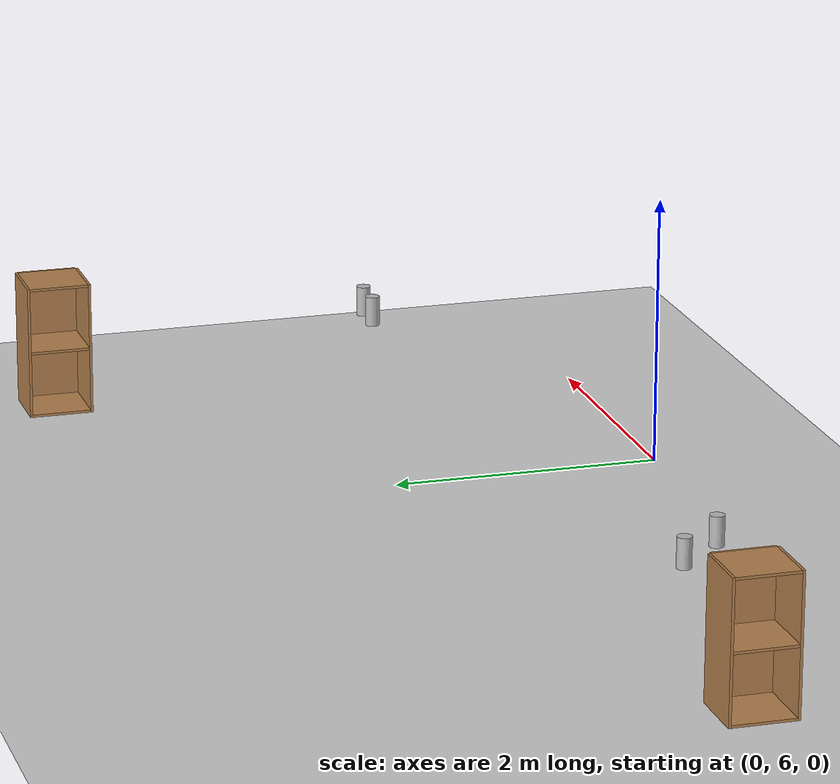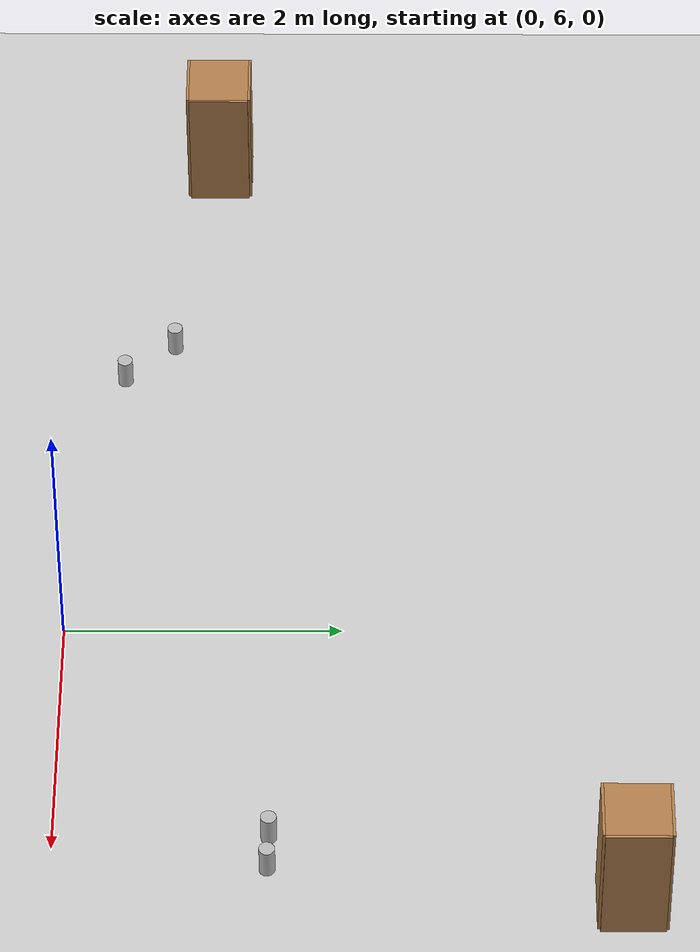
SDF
<sdf version="1.6">
 <world name="default">
  <model name="ground_plane">
   <static>1</static>
   <link name="link">
    <collision name="collision">
     <geometry><plane><normal>0 0 1</normal><size>100 100</size></plane></geometry>
     <surface><friction><ode><mu>100</mu><mu2>50</mu2></ode></friction></surface>
    </collision>
    <visual name="visual">
     <transparency>1</transparency>
     <cast_shadows>0</cast_shadows>
     <geometry><plane><normal>0 0 1</normal><size>100 100</size></plane></geometry>
     <material>
      <script><uri>file://media/materials/scripts/gazebo.material</uri><name>Gazebo/Grey</name></script>
     </material>
    </visual>
   </link>
  </model>
  <model name="cabinet">
   <static>1</static>
   <link name="cabinet_bottom_plate">
    <inertial>
     <pose>0 0 -1 0 -0 0</pose>
     <inertia><ixx>2.05</ixx><ixy>0</ixy><ixz>0</ixz><iyy>2.05</iyy><iyz>0</iyz><izz>2.05</izz></inertia>
     <mass>25</mass>
    </inertial>
    <collision name="cabinet_bottom_plate_geom">
     <pose>0 0 0.01 0 -0 0</pose>
     <geometry><box><size>0.45 0.45 0.02</size></box></geometry>
    </collision>
    <visual name="cabinet_bottom_plate_geom_visual">
     <pose>0 0 0.01 0 -0 0</pose>
     <geometry><box><size>0.45 0.45 0.02</size></box></geometry>
     <material>
      <script><uri>file://media/materials/scripts/gazebo.material</uri><name>Gazebo/Wood</name></script>
     </material>
    </visual>
    <collision name="cabinet_bottom_plate_geom_cabinet_back_plate">
     <pose>0.235 0 0.51 0 -0 0</pose>
     <geometry><box><size>0.02 0.45 1.02</size></box></geometry>
    </collision>
    <visual name="cabinet_bottom_plate_geom_cabinet_back_plate_visual">
     <pose>0.235 0 0.51 0 -0 0</pose>
     <geometry><box><size>0.02 0.45 1.02</size></box></geometry>
     <material>
      <script><uri>file://media/materials/scripts/gazebo.material</uri><name>Gazebo/Wood</name></script>
     </material>
    </visual>
    <collision name="cabinet_bottom_plate_geom_cabinet_left_plate">
     <pose>0 0.235 0.51 0 -0 0</pose>
     <geometry><box><size>0.45 0.02 1.02</size></box></geometry>
    </collision>
    <visual name="cabinet_bottom_plate_geom_cabinet_left_plate_visual">
     <pose>0 0.235 0.51 0 -0 0</pose>
     <geometry><box><size>0.45 0.02 1.02</size></box></geometry>
     <material>
      <script><uri>file://media/materials/scripts/gazebo.material</uri><name>Gazebo/Wood</name></script>
     </material>
    </visual>
    <collision name="cabinet_bottom_plate_geom_cabinet_middle_plate">
     <pose>0 0 0.51 0 -0 0</pose>
     <geometry><box><size>0.45 0.45 0.02</size></box></geometry>
    </collision>
    <visual name="cabinet_bottom_plate_geom_cabinet_middle_plate_visual">
     <pose>0 0 0.51 0 -0 0</pose>
     <geometry><box><size>0.45 0.45 0.02</size></box></geometry>
     <material>
      <script><uri>file://media/materials/scripts/gazebo.material</uri><name>Gazebo/Wood</name></script>
     </material>
    </visual>
    <collision name="cabinet_bottom_plate_geom_cabinet_right_plate">
     <pose>0 -0.235 0.51 0 -0 0</pose>
     <geometry><box><size>0.45 0.02 1.02</size></box></geometry>
    </collision>
    <visual name="cabinet_bottom_plate_geom_cabinet_right_plate_visual">
     <pose>0 -0.235 0.51 0 -0 0</pose>
     <geometry><box><size>0.45 0.02 1.02</size></box></geometry>
     <material>
      <script><uri>file://media/materials/scripts/gazebo.material</uri><name>Gazebo/Wood</name></script>
     </material>
    </visual>
    <collision name="cabinet_bottom_plate_geom_cabinet_top_plate">
     <pose>0 0 1.01 0 -0 0</pose>
     <geometry><box><size>0.45 0.45 0.02</size></box></geometry>
    </collision>
    <visual name="cabinet_bottom_plate_geom_cabinet_top_plate_visual">
     <pose>0 0 1.01 0 -0 0</pose>
     <geometry><box><size>0.45 0.45 0.02</size></box></geometry>
     <material>
      <script><uri>file://media/materials/scripts/gazebo.material</uri><name>Gazebo/Wood</name></script>
     </material>
    </visual>
   </link>
   <pose>2.46497 9.99795 0 0 -0 0</pose>
  </model>
  <model name="cabinet_0">
   <static>1</static>
   <link name="cabinet_bottom_plate">
    <inertial>
     <pose>0 0 -1 0 -0 0</pose>
     <inertia><ixx>2.05</ixx><ixy>0</ixy><ixz>0</ixz><iyy>2.05</iyy><iyz>0</iyz><izz>2.05</izz></inertia>
     <mass>25</mass>
    </inertial>
    <collision name="cabinet_bottom_plate_geom">
     <pose>0 0 0.01 0 -0 0</pose>
     <geometry><box><size>0.45 0.45 0.02</size></box></geometry>
    </collision>
    <visual name="cabinet_bottom_plate_geom_visual">
     <pose>0 0 0.01 0 -0 0</pose>
     <geometry><box><size>0.45 0.45 0.02</size></box></geometry>
     <material>
      <script><uri>file://media/materials/scripts/gazebo.material</uri><name>Gazebo/Wood</name></script>
     </material>
    </visual>
    <collision name="cabinet_bottom_plate_geom_cabinet_back_plate">
     <pose>0.235 0 0.51 0 -0 0</pose>
     <geometry><box><size>0.02 0.45 1.02</size></box></geometry>
    </collision>
    <visual name="cabinet_bottom_plate_geom_cabinet_back_plate_visual">
     <pose>0.235 0 0.51 0 -0 0</pose>
     <geometry><box><size>0.02 0.45 1.02</size></box></geometry>
     <material>
      <script><uri>file://media/materials/scripts/gazebo.material</uri><name>Gazebo/Wood</name></script>
     </material>
    </visual>
    <collision name="cabinet_bottom_plate_geom_cabinet_left_plate">
     <pose>0 0.235 0.51 0 -0 0</pose>
     <geometry><box><size>0.45 0.02 1.02</size></box></geometry>
    </collision>
    <visual name="cabinet_bottom_plate_geom_cabinet_left_plate_visual">
     <pose>0 0.235 0.51 0 -0 0</pose>
     <geometry><box><size>0.45 0.02 1.02</size></box></geometry>
     <material>
      <script><uri>file://media/materials/scripts/gazebo.material</uri><name>Gazebo/Wood</name></script>
     </material>
    </visual>
    <collision name="cabinet_bottom_plate_geom_cabinet_middle_plate">
     <pose>0 0 0.51 0 -0 0</pose>
     <geometry><box><size>0.45 0.45 0.02</size></box></geometry>
    </collision>
    <visual name="cabinet_bottom_plate_geom_cabinet_middle_plate_visual">
     <pose>0 0 0.51 0 -0 0</pose>
     <geometry><box><size>0.45 0.45 0.02</size></box></geometry>
     <material>
      <script><uri>file://media/materials/scripts/gazebo.material</uri><name>Gazebo/Wood</name></script>
     </material>
    </visual>
    <collision name="cabinet_bottom_plate_geom_cabinet_right_plate">
     <pose>0 -0.235 0.51 0 -0 0</pose>
     <geometry><box><size>0.45 0.02 1.02</size></box></geometry>
    </collision>
    <visual name="cabinet_bottom_plate_geom_cabinet_right_plate_visual">
     <pose>0 -0.235 0.51 0 -0 0</pose>
     <geometry><box><size>0.45 0.02 1.02</size></box></geometry>
     <material>
      <script><uri>file://media/materials/scripts/gazebo.material</uri><name>Gazebo/Wood</name></script>
     </material>
    </visual>
    <collision name="cabinet_bottom_plate_geom_cabinet_top_plate">
     <pose>0 0 1.01 0 -0 0</pose>
     <geometry><box><size>0.45 0.45 0.02</size></box></geometry>
    </collision>
    <visual name="cabinet_bottom_plate_geom_cabinet_top_plate_visual">
     <pose>0 0 1.01 0 -0 0</pose>
     <geometry><box><size>0.45 0.45 0.02</size></box></geometry>
     <material>
      <script><uri>file://media/materials/scripts/gazebo.material</uri><name>Gazebo/Wood</name></script>
     </material>
    </visual>
   </link>
   <pose>-4.71868 7.02561 0 0 -0 0</pose>
  </model>
  <model name="beer_5">
   <link name="link">
    <pose>0 0 0.115 0 -0 0</pose>
    <inertial>
     <mass>0.39</mass>
     <inertia><ixx>0.00058</ixx><ixy>0</ixy><ixz>0</ixz><iyy>0.00058</iyy><iyz>0</iyz><izz>0.00019</izz></inertia>
    </inertial>
    <collision name="collision">
     <geometry><cylinder><radius>0.055</radius><length>0.23</length></cylinder></geometry>
    </collision>
    <visual name="visual">
     <geometry><cylinder><radius>0.055</radius><length>0.23</length></cylinder></geometry>
     <material>
      <script>
       <uri>model://beer/materials/scripts</uri>
       <uri>model://beer/materials/textures</uri>
       <name>Beer/Diffuse</name>
      </script>
     </material>
    </visual>
   </link>
   <pose>-2.30112 6.37296 0.189796 2.2e-05 9.9e-05 0.000951</pose>
  </model>
  <model name="beer_6">
   <link name="link">
    <pose>0 0 0.115 0 -0 0</pose>
    <inertial>
     <mass>0.39</mass>
     <inertia><ixx>0.00058</ixx><ixy>0</ixy><ixz>0</ixz><iyy>0.00058</iyy><iyz>0</iyz><izz>0.00019</izz></inertia>
    </inertial>
    <collision name="collision">
     <geometry><cylinder><radius>0.055</radius><length>0.23</length></cylinder></geometry>
    </collision>
    <visual name="visual">
     <geometry><cylinder><radius>0.055</radius><length>0.23</length></cylinder></geometry>
     <material>
      <script>
       <uri>model://beer/materials/scripts</uri>
       <uri>model://beer/materials/textures</uri>
       <name>Beer/Diffuse</name>
      </script>
     </material>
    </visual>
   </link>
   <pose>-2.63858 6.7347 0.189796 2.6e-05 0.000102 -0.000292</pose>
  </model>
  <model name="beer_9">
   <link name="link">
    <pose>0 0 0.115 0 -0 0</pose>
    <inertial>
     <mass>0.39</mass>
     <inertia><ixx>0.00058</ixx><ixy>0</ixy><ixz>0</ixz><iyy>0.00058</iyy><iyz>0</iyz><izz>0.00019</izz></inertia>
    </inertial>
    <collision name="collision">
     <geometry><cylinder><radius>0.055</radius><length>0.23</length></cylinder></geometry>
    </collision>
    <visual name="visual">
     <geometry><cylinder><radius>0.055</radius><length>0.23</length></cylinder></geometry>
     <material>
      <script>
       <uri>model://beer/materials/scripts</uri>
       <uri>model://beer/materials/textures</uri>
       <name>Beer/Diffuse</name>
      </script>
     </material>
    </visual>
   </link>
   <pose>2.29645 7.51528 0.488799 -7e-06 9e-06 0.001921</pose>
  </model>
  <model name="beer_10">
   <link name="link">
    <pose>0 0 0.115 0 -0 0</pose>
    <inertial>
     <mass>0.39</mass>
     <inertia><ixx>0.00058</ixx><ixy>0</ixy><ixz>0</ixz><iyy>0.00058</iyy><iyz>0</iyz><izz>0.00019</izz></inertia>
    </inertial>
    <collision name="collision">
     <geometry><cylinder><radius>0.055</radius><length>0.23</length></cylinder></geometry>
    </collision>
    <visual name="visual">
     <geometry><cylinder><radius>0.055</radius><length>0.23</length></cylinder></geometry>
     <material>
      <script>
       <uri>model://beer/materials/scripts</uri>
       <uri>model://beer/materials/textures</uri>
       <name>Beer/Diffuse</name>
      </script>
     </material>
    </visual>
   </link>
   <pose>2.56994 7.50845 0.4888 8e-06 -7e-06 0.001201</pose>
  </model>
 </world>
</sdf>
